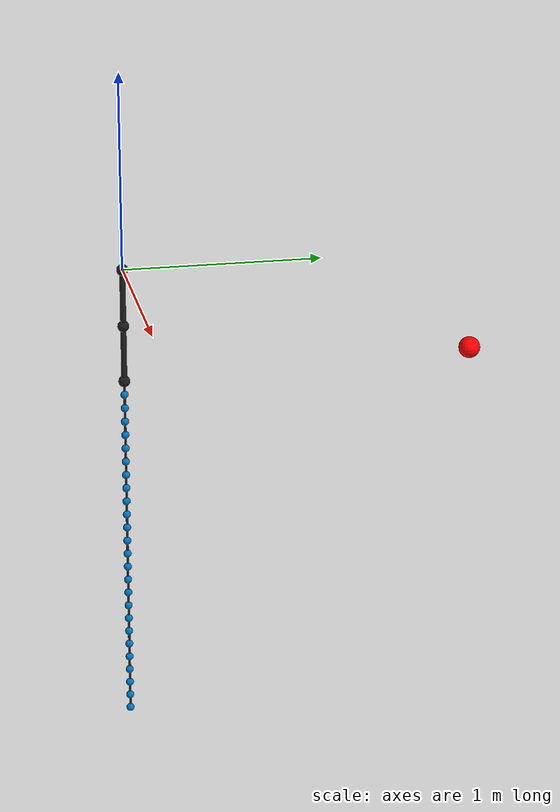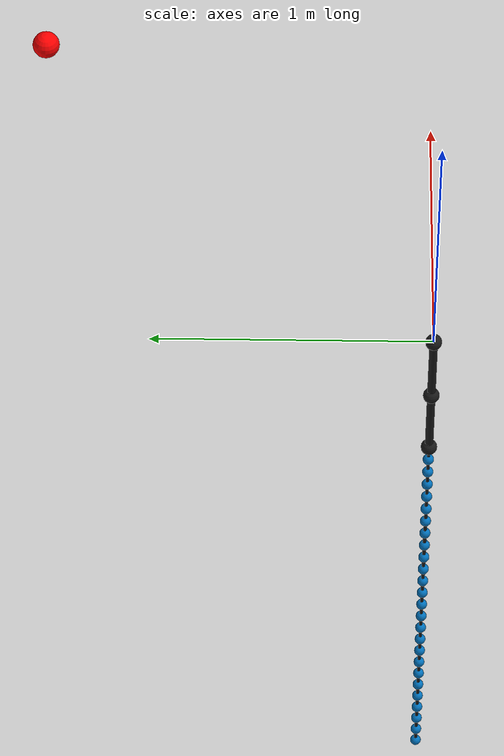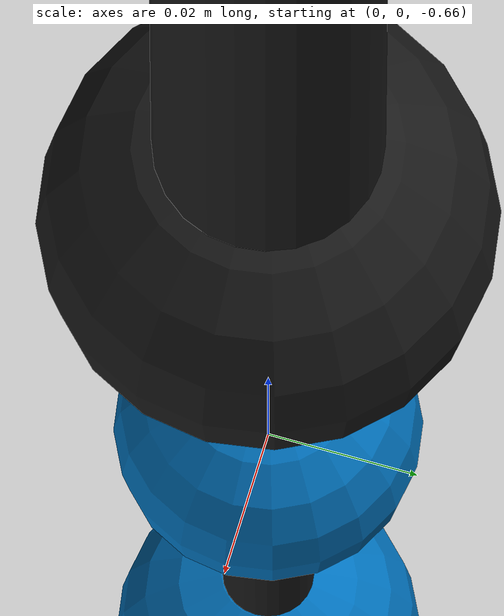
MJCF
<mujoco model="1_3D_model_w_N25">
  <compiler inertiafromgeom="auto" angle="radian" />
   <option timestep="0.0001" iterations="50" solver="PGS" integrator="Euler" gravity="0 0 -9.81" collision="all">
     <flag energy="enable" />
   </option>
   <asset>
		 <texture type="skybox" builtin="checker" rgb1="1 1 1" rgb2="1 1 1" width="200" height="200"  />
     <!-- Joint and Limb Color -->
		 <material name="JointColor" 		 rgba="0.1 0.1 0.1 1" />
		 <material name="LimbColor" 		 rgba="0.1 0.1 0.1 1" />
		 <material name="pointMassColor" rgba="0 0.4470 0.7410 1" />
		 <material name="RefMassColor" 	 rgba="0.2 0.9 0.1 1.0" />

  </asset>

	<contact> <!-- Excluding the 5 bodies from the tip of the whip for target contact -->
		<exclude body1="body_node21" body2="body_target"/>
		<exclude body1="body_node22" body2="body_target"/>
		<exclude body1="body_node23" body2="body_target"/>
		<exclude body1="body_node24" body2="body_target"/>
		<exclude body1="body_node25" body2="body_target"/>
	</contact>

	<visual>
		<global glow="1.0" fovy="45" ipd="0.0"/>
		<headlight specular="0.0 0.0 0.0" diffuse="1.0 1.0 1.0"/>
	</visual>

   <worldbody>
     <body name="cameramover" mocap="true" pos="0 0 0">
        <camera name="mycamera" pos="0.0 2.0 2.0" euler="1.5707 0 0" />
      </body>
      <body name="body_upper_arm" pos="0 0 0" euler="0 0 0">
        <inertial pos="0 0 -0.129" mass="1.595" diaginertia="0.011917 0.011937 0.001325" />
         <geom name="geom_shoulder" type="sphere" pos="0 0 0" material="JointColor" size="0.0294" mass="0" />
         <joint name="joint_shoulder_flex_ext" ref="0" type="hinge" stiffness="0" pos = "0 0 0" axis = "0 -1 0" />
         <joint name='joint_shoulder_add_abd' ref='0'  type='hinge' stiffness='0' pos='0 0 0' axis='-1 0 0' />
         <joint name='joint_shoulder_med_lat' ref='0'  type='hinge' stiffness='0' pos='0 0 0' axis=' 0 0 1' />
         <site name="site_upper_arm_COM" pos="0 0 -0.129" />
         <geom type="cylinder" fromto="0 0 0 0 0 -0.294" material="LimbColor" mass="0" size="0.0147" />
         <body name="body_fore_arm" pos="0 0 -0.294" euler="0 0 0">
           <inertial pos="0 0 -0.112" mass="0.869" diaginertia="0.004765 0.004855 0.000472" />
            <geom name="geom_elbow" type="sphere" pos="0 0 0" material="JointColor" size="0.0294" mass="0" />
            <joint name="joint_elbow" ref="0" type="hinge" stiffness="0" pos="0 0 0" axis="0 -1 0" />
            <geom type="cylinder" fromto="0 0 0 0 0 -0.291" material="LimbColor" mass="0" size="0.0147" />
            <site name="site_fore_arm_COM" pos="0 0 -0.112" />
            <geom name="geom_end_effector" type="sphere" pos="0 0 -0.291" material="JointColor" size="0.0294" mass="0" />
            <body name="body_node1" euler="0 0 0" pos="0 0 -0.291">
    					<site name='site_for_force_sensor' pos='0 0 0' />   <!-- Attaching force sensor -->
              <joint name="joint_node1_X" type="hinge" axis="1 0 0" pos="0 0 0" springref="0" stiffness="0" damping="0" />
               <joint name="joint_node1_Y" type="hinge" axis="0 -1 0" pos="0 0 0" springref="0" stiffness="0" damping="0" />
               <geom type="cylinder" fromto="0 0 0 0 0 -0.0720" material="LimbColor" size="0.0060000" mass="0" />
               <geom name="geom_1" type="sphere" material="pointMassColor" pos="0 0 -0.0720" size="0.0200000" mass="0.0120000" />
               <body name="body_node2" euler="0 0 0" pos="0 0 -0.0720">
                 <joint name="joint_node2_X" type="hinge" axis="1 0 0" pos="0 0 0" springref="0" stiffness="0.242" damping="0.092" />
                  <joint name="joint_node2_Y" type="hinge" axis="0 -1 0" pos="0 0 0" springref="0" stiffness="0.242" damping="0.092" />
                  <geom type="cylinder" fromto="0 0 0 0 0 -0.0720" material="LimbColor" size="0.0060000" mass="0" />
                  <geom name="geom_2" type="sphere" material="pointMassColor" pos="0 0 -0.0720" size="0.0200000" mass="0.0120000" />
                  <body name="body_node3" euler="0 0 0" pos="0 0 -0.0720">
                    <joint name="joint_node3_X" type="hinge" axis="1 0 0" pos="0 0 0" springref="0" stiffness="0.242" damping="0.092" />
                     <joint name="joint_node3_Y" type="hinge" axis="0 -1 0" pos="0 0 0" springref="0" stiffness="0.242" damping="0.092" />
                     <geom type="cylinder" fromto="0 0 0 0 0 -0.0720" material="LimbColor" size="0.0060000" mass="0" />
                     <geom name="geom_3" type="sphere" material="pointMassColor" pos="0 0 -0.0720" size="0.0200000" mass="0.0120000" />
                     <body name="body_node4" euler="0 0 0" pos="0 0 -0.0720">
                       <joint name="joint_node4_X" type="hinge" axis="1 0 0" pos="0 0 0" springref="0" stiffness="0.242" damping="0.092" />
                        <joint name="joint_node4_Y" type="hinge" axis="0 -1 0" pos="0 0 0" springref="0" stiffness="0.242" damping="0.092" />
                        <geom type="cylinder" fromto="0 0 0 0 0 -0.0720" material="LimbColor" size="0.0060000" mass="0" />
                        <geom name="geom_4" type="sphere" material="pointMassColor" pos="0 0 -0.0720" size="0.0200000" mass="0.0120000" />
                        <body name="body_node5" euler="0 0 0" pos="0 0 -0.0720">
                          <joint name="joint_node5_X" type="hinge" axis="1 0 0" pos="0 0 0" springref="0" stiffness="0.242" damping="0.092" />
                           <joint name="joint_node5_Y" type="hinge" axis="0 -1 0" pos="0 0 0" springref="0" stiffness="0.242" damping="0.092" />
                           <geom type="cylinder" fromto="0 0 0 0 0 -0.0720" material="LimbColor" size="0.0060000" mass="0" />
                           <geom name="geom_5" type="sphere" material="pointMassColor" pos="0 0 -0.0720" size="0.0200000" mass="0.0120000" />
                           <body name="body_node6" euler="0 0 0" pos="0 0 -0.0720">
                             <joint name="joint_node6_X" type="hinge" axis="1 0 0" pos="0 0 0" springref="0" stiffness="0.242" damping="0.092" />
                              <joint name="joint_node6_Y" type="hinge" axis="0 -1 0" pos="0 0 0" springref="0" stiffness="0.242" damping="0.092" />
                              <geom type="cylinder" fromto="0 0 0 0 0 -0.0720" material="LimbColor" size="0.0060000" mass="0" />
                              <geom name="geom_6" type="sphere" material="pointMassColor" pos="0 0 -0.0720" size="0.0200000" mass="0.0120000" />
                              <body name="body_node7" euler="0 0 0" pos="0 0 -0.0720">
                                <joint name="joint_node7_X" type="hinge" axis="1 0 0" pos="0 0 0" springref="0" stiffness="0.242" damping="0.092" />
                                 <joint name="joint_node7_Y" type="hinge" axis="0 -1 0" pos="0 0 0" springref="0" stiffness="0.242" damping="0.092" />
                                 <geom type="cylinder" fromto="0 0 0 0 0 -0.0720" material="LimbColor" size="0.0060000" mass="0" />
                                 <geom name="geom_7" type="sphere" material="pointMassColor" pos="0 0 -0.0720" size="0.0200000" mass="0.0120000" />
                                 <body name="body_node8" euler="0 0 0" pos="0 0 -0.0720">
                                   <joint name="joint_node8_X" type="hinge" axis="1 0 0" pos="0 0 0" springref="0" stiffness="0.242" damping="0.092" />
                                    <joint name="joint_node8_Y" type="hinge" axis="0 -1 0" pos="0 0 0" springref="0" stiffness="0.242" damping="0.092" />
                                    <geom type="cylinder" fromto="0 0 0 0 0 -0.0720" material="LimbColor" size="0.0060000" mass="0" />
                                    <geom name="geom_8" type="sphere" material="pointMassColor" pos="0 0 -0.0720" size="0.0200000" mass="0.0120000" />
                                    <body name="body_node9" euler="0 0 0" pos="0 0 -0.0720">
                                      <joint name="joint_node9_X" type="hinge" axis="1 0 0" pos="0 0 0" springref="0" stiffness="0.242" damping="0.092" />
                                       <joint name="joint_node9_Y" type="hinge" axis="0 -1 0" pos="0 0 0" springref="0" stiffness="0.242" damping="0.092" />
                                       <geom type="cylinder" fromto="0 0 0 0 0 -0.0720" material="LimbColor" size="0.0060000" mass="0" />
                                       <geom name="geom_9" type="sphere" material="pointMassColor" pos="0 0 -0.0720" size="0.0200000" mass="0.0120000" />
                                       <body name="body_node10" euler="0 0 0" pos="0 0 -0.0720">
                                         <joint name="joint_node10_X" type="hinge" axis="1 0 0" pos="0 0 0" springref="0" stiffness="0.242" damping="0.092" />
                                          <joint name="joint_node10_Y" type="hinge" axis="0 -1 0" pos="0 0 0" springref="0" stiffness="0.242" damping="0.092" />
                                          <geom type="cylinder" fromto="0 0 0 0 0 -0.0720" material="LimbColor" size="0.0060000" mass="0" />
                                          <geom name="geom_10" type="sphere" material="pointMassColor" pos="0 0 -0.0720" size="0.0200000" mass="0.0120000" />
                                          <body name="body_node11" euler="0 0 0" pos="0 0 -0.0720">
                                            <joint name="joint_node11_X" type="hinge" axis="1 0 0" pos="0 0 0" springref="0" stiffness="0.242" damping="0.092" />
                                             <joint name="joint_node11_Y" type="hinge" axis="0 -1 0" pos="0 0 0" springref="0" stiffness="0.242" damping="0.092" />
                                             <geom type="cylinder" fromto="0 0 0 0 0 -0.0720" material="LimbColor" size="0.0060000" mass="0" />
                                             <geom name="geom_11" type="sphere" material="pointMassColor" pos="0 0 -0.0720" size="0.0200000" mass="0.0120000" />
                                             <body name="body_node12" euler="0 0 0" pos="0 0 -0.0720">
                                               <joint name="joint_node12_X" type="hinge" axis="1 0 0" pos="0 0 0" springref="0" stiffness="0.242" damping="0.092" />
                                                <joint name="joint_node12_Y" type="hinge" axis="0 -1 0" pos="0 0 0" springref="0" stiffness="0.242" damping="0.092" />
                                                <geom type="cylinder" fromto="0 0 0 0 0 -0.0720" material="LimbColor" size="0.0060000" mass="0" />
                                                <geom name="geom_12" type="sphere" material="pointMassColor" pos="0 0 -0.0720" size="0.0200000" mass="0.0120000" />
                                                <body name="body_node13" euler="0 0 0" pos="0 0 -0.0720">
                                                  <joint name="joint_node13_X" type="hinge" axis="1 0 0" pos="0 0 0" springref="0" stiffness="0.242" damping="0.092" />
                                                   <joint name="joint_node13_Y" type="hinge" axis="0 -1 0" pos="0 0 0" springref="0" stiffness="0.242" damping="0.092" />
                                                   <geom type="cylinder" fromto="0 0 0 0 0 -0.0720" material="LimbColor" size="0.0060000" mass="0" />
                                                   <geom name="geom_13" type="sphere" material="pointMassColor" pos="0 0 -0.0720" size="0.0200000" mass="0.0120000" />
                                                   <body name="body_node14" euler="0 0 0" pos="0 0 -0.0720">
                                                     <joint name="joint_node14_X" type="hinge" axis="1 0 0" pos="0 0 0" springref="0" stiffness="0.242" damping="0.092" />
                                                      <joint name="joint_node14_Y" type="hinge" axis="0 -1 0" pos="0 0 0" springref="0" stiffness="0.242" damping="0.092" />
                                                      <geom type="cylinder" fromto="0 0 0 0 0 -0.0720" material="LimbColor" size="0.0060000" mass="0" />
                                                      <geom name="geom_14" type="sphere" material="pointMassColor" pos="0 0 -0.0720" size="0.0200000" mass="0.0120000" />
                                                      <body name="body_node15" euler="0 0 0" pos="0 0 -0.0720">
                                                        <joint name="joint_node15_X" type="hinge" axis="1 0 0" pos="0 0 0" springref="0" stiffness="0.242" damping="0.092" />
                                                         <joint name="joint_node15_Y" type="hinge" axis="0 -1 0" pos="0 0 0" springref="0" stiffness="0.242" damping="0.092" />
                                                         <geom type="cylinder" fromto="0 0 0 0 0 -0.0720" material="LimbColor" size="0.0060000" mass="0" />
                                                         <geom name="geom_15" type="sphere" material="pointMassColor" pos="0 0 -0.0720" size="0.0200000" mass="0.0120000" />
                                                         <body name="body_node16" euler="0 0 0" pos="0 0 -0.0720">
                                                           <joint name="joint_node16_X" type="hinge" axis="1 0 0" pos="0 0 0" springref="0" stiffness="0.242" damping="0.092" />
                                                            <joint name="joint_node16_Y" type="hinge" axis="0 -1 0" pos="0 0 0" springref="0" stiffness="0.242" damping="0.092" />
                                                            <geom type="cylinder" fromto="0 0 0 0 0 -0.0720" material="LimbColor" size="0.0060000" mass="0" />
                                                            <geom name="geom_16" type="sphere" material="pointMassColor" pos="0 0 -0.0720" size="0.0200000" mass="0.0120000" />
                                                            <body name="body_node17" euler="0 0 0" pos="0 0 -0.0720">
                                                              <joint name="joint_node17_X" type="hinge" axis="1 0 0" pos="0 0 0" springref="0" stiffness="0.242" damping="0.092" />
                                                               <joint name="joint_node17_Y" type="hinge" axis="0 -1 0" pos="0 0 0" springref="0" stiffness="0.242" damping="0.092" />
                                                               <geom type="cylinder" fromto="0 0 0 0 0 -0.0720" material="LimbColor" size="0.0060000" mass="0" />
                                                               <geom name="geom_17" type="sphere" material="pointMassColor" pos="0 0 -0.0720" size="0.0200000" mass="0.0120000" />
                                                               <body name="body_node18" euler="0 0 0" pos="0 0 -0.0720">
                                                                 <joint name="joint_node18_X" type="hinge" axis="1 0 0" pos="0 0 0" springref="0" stiffness="0.242" damping="0.092" />
                                                                  <joint name="joint_node18_Y" type="hinge" axis="0 -1 0" pos="0 0 0" springref="0" stiffness="0.242" damping="0.092" />
                                                                  <geom type="cylinder" fromto="0 0 0 0 0 -0.0720" material="LimbColor" size="0.0060000" mass="0" />
                                                                  <geom name="geom_18" type="sphere" material="pointMassColor" pos="0 0 -0.0720" size="0.0200000" mass="0.0120000" />
                                                                  <body name="body_node19" euler="0 0 0" pos="0 0 -0.0720">
                                                                    <joint name="joint_node19_X" type="hinge" axis="1 0 0" pos="0 0 0" springref="0" stiffness="0.242" damping="0.092" />
                                                                     <joint name="joint_node19_Y" type="hinge" axis="0 -1 0" pos="0 0 0" springref="0" stiffness="0.242" damping="0.092" />
                                                                     <geom type="cylinder" fromto="0 0 0 0 0 -0.0720" material="LimbColor" size="0.0060000" mass="0" />
                                                                     <geom name="geom_19" type="sphere" material="pointMassColor" pos="0 0 -0.0720" size="0.0200000" mass="0.0120000" />
                                                                     <body name="body_node20" euler="0 0 0" pos="0 0 -0.0720">
                                                                       <joint name="joint_node20_X" type="hinge" axis="1 0 0" pos="0 0 0" springref="0" stiffness="0.242" damping="0.092" />
                                                                        <joint name="joint_node20_Y" type="hinge" axis="0 -1 0" pos="0 0 0" springref="0" stiffness="0.242" damping="0.092" />
                                                                        <geom type="cylinder" fromto="0 0 0 0 0 -0.0720" material="LimbColor" size="0.0060000" mass="0" />
                                                                        <geom name="geom_20" type="sphere" material="pointMassColor" pos="0 0 -0.0720" size="0.0200000" mass="0.0120000" />
                                                                        <body name="body_node21" euler="0 0 0" pos="0 0 -0.0720">
                                                                          <joint name="joint_node21_X" type="hinge" axis="1 0 0" pos="0 0 0" springref="0" stiffness="0.242" damping="0.092" />
                                                                           <joint name="joint_node21_Y" type="hinge" axis="0 -1 0" pos="0 0 0" springref="0" stiffness="0.242" damping="0.092" />
                                                                           <geom type="cylinder" fromto="0 0 0 0 0 -0.0720" material="LimbColor" size="0.0060000" mass="0" />
                                                                           <geom name="geom_21" type="sphere" material="pointMassColor" pos="0 0 -0.0720" size="0.0200000" mass="0.0120000" />
                                                                           <body name="body_node22" euler="0 0 0" pos="0 0 -0.0720">
                                                                             <joint name="joint_node22_X" type="hinge" axis="1 0 0" pos="0 0 0" springref="0" stiffness="0.242" damping="0.092" />
                                                                              <joint name="joint_node22_Y" type="hinge" axis="0 -1 0" pos="0 0 0" springref="0" stiffness="0.242" damping="0.092" />
                                                                              <geom type="cylinder" fromto="0 0 0 0 0 -0.0720" material="LimbColor" size="0.0060000" mass="0" />
                                                                              <geom name="geom_22" type="sphere" material="pointMassColor" pos="0 0 -0.0720" size="0.0200000" mass="0.0120000" />
                                                                              <body name="body_node23" euler="0 0 0" pos="0 0 -0.0720">
                                                                                <joint name="joint_node23_X" type="hinge" axis="1 0 0" pos="0 0 0" springref="0" stiffness="0.242" damping="0.092" />
                                                                                 <joint name="joint_node23_Y" type="hinge" axis="0 -1 0" pos="0 0 0" springref="0" stiffness="0.242" damping="0.092" />
                                                                                 <geom type="cylinder" fromto="0 0 0 0 0 -0.0720" material="LimbColor" size="0.0060000" mass="0" />
                                                                                 <geom name="geom_23" type="sphere" material="pointMassColor" pos="0 0 -0.0720" size="0.0200000" mass="0.0120000" />
                                                                                 <body name="body_node24" euler="0 0 0" pos="0 0 -0.0720">
                                                                                   <joint name="joint_node24_X" type="hinge" axis="1 0 0" pos="0 0 0" springref="0" stiffness="0.242" damping="0.092" />
                                                                                    <joint name="joint_node24_Y" type="hinge" axis="0 -1 0" pos="0 0 0" springref="0" stiffness="0.242" damping="0.092" />
                                                                                    <geom type="cylinder" fromto="0 0 0 0 0 -0.0720" material="LimbColor" size="0.0060000" mass="0" />
                                                                                    <geom name="geom_24" type="sphere" material="pointMassColor" pos="0 0 -0.0720" size="0.0200000" mass="0.0120000" />
                                                                                    <body name="body_node25" euler="0 0 0" pos="0 0 -0.0720">
                                                                                      <joint name="joint_node25_X" type="hinge" axis="1 0 0" pos="0 0 0" springref="0" stiffness="0.242" damping="0.092" />
                                                                                       <joint name="joint_node25_Y" type="hinge" axis="0 -1 0" pos="0 0 0" springref="0" stiffness="0.242" damping="0.092" />
                                                                                       <geom type="cylinder" fromto="0 0 0 0 0 -0.0720" material="LimbColor" size="0.0060000" mass="0" />
                                                                                       <geom name="geom_25_tip" type="sphere" material="pointMassColor" pos="0 0 -0.0720" size="0.0200000" mass="0.0120000" />
                                                                                    </body>
                                                                                 </body>
                                                                              </body>
                                                                           </body>
                                                                        </body>
                                                                     </body>
                                                                  </body>
                                                               </body>
                                                            </body>
                                                         </body>
                                                      </body>
                                                   </body>
                                                </body>
                                             </body>
                                          </body>
                                       </body>
                                    </body>
                                 </body>
                              </body>
                           </body>
                        </body>
                     </body>
                  </body>
               </body>
            </body>
            <!-- === [ N, L, M, k, b, rho ] = [25,1.800000,0.300000,0.242000,0.092000,1.000000] -->
         </body>
      </body>

			<body name="body_target" pos="1.414 1.414 0">
					<geom name="geom_target" type="sphere" pos="0 0 0" rgba="1 0 0 1" mass="0" size="0.05"  />
			</body>

   </worldbody>

   <!-- BACKUP-->
    <sensor>
  			<force name = 'force_sensor_wrist' site = 'site_for_force_sensor' />
  	</sensor>

   <actuator>
      <motor joint="joint_shoulder_flex_ext" name="motor_shoulder_flex_ext" forcelimited="false" />
      <motor joint="joint_shoulder_add_abd"  name="motor_shoulder_add_abd"  forcelimited="false" />
      <motor joint="joint_shoulder_med_lat"  name="motor_shoulder_med_lat"  forcelimited="false" />
      <motor joint="joint_elbow" 						 name="motor_elbow" 						forcelimited="false" />
   </actuator>
</mujoco>
